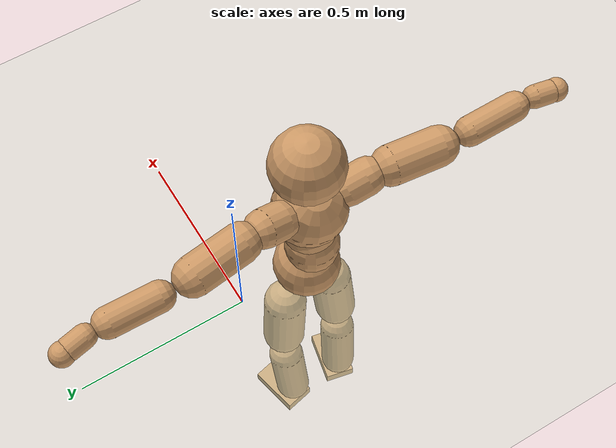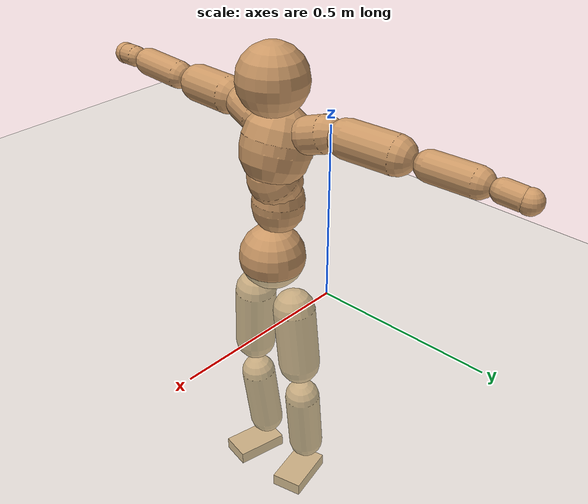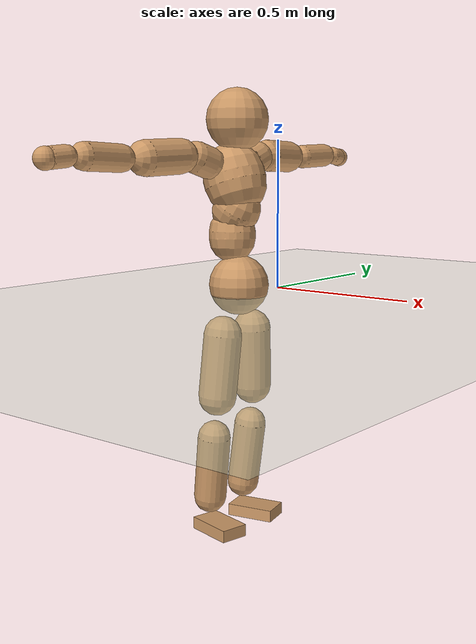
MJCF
<mujoco model="humanoid">
  <compiler coordinate="local"/>
  <default>
    <joint damping="0.0" armature="0.01" stiffness="0.0" limited="true"/>
    <geom conaffinity="1" condim="3" contype="7" margin="0.001" rgba="0.8 0.6 .4 1"/>
  </default>
  <asset>
    <texture type="skybox" builtin="gradient" rgb1=".4 .5 .6" rgb2="0 0 0" width="100" height="100"/>
    <texture builtin="flat" height="1278" mark="cross" markrgb="1 1 1" name="texgeom" random="0.01" rgb1="0.8 0.6 0.4" rgb2="0.8 0.6 0.4" type="cube" width="127"/>
    <texture builtin="checker" height="100" name="texplane" rgb1="0 0 0" rgb2="0.8 0.8 0.8" type="2d" width="100"/>
    <material name="MatPlane" reflectance="0.5" shininess="1" specular="1" texrepeat="60 60" texture="texplane"/>
    <material name="geom" texture="texgeom" texuniform="true"/>
  </asset>
  <worldbody>
    <light cutoff="100" diffuse="1 1 1" dir="-0 0 -1.3" directional="true" exponent="1" pos="0 0 1.3" specular=".1 .1 .1"/>
    <geom conaffinity="1" condim="3" name="floor" pos="0 0 0" rgba="0.8 0.9 0.8 1" size="100 100 .2" type="plane" material="MatPlane"/>
    <body name="Pelvis" pos="-0.0017 -0.2108 0.0328">
      <freejoint name="Pelvis"/>
      <geom type="sphere" contype="1" conaffinity="1" density="500" size="0.0973" pos="0.0000 0.0000 0.0000" name="Pelvis"/>
      <body name="L_Hip" pos="-0.0043 0.0735 -0.0885">
        <joint name="L_Hip_x" type="hinge" pos="0 0 0" axis="1 0 0" stiffness="800" damping="80" armature="0.02" range="-180.0000 180.0000"/>
        <joint name="L_Hip_y" type="hinge" pos="0 0 0" axis="0 1 0" stiffness="800" damping="80" armature="0.02" range="-180.0000 180.0000"/>
        <joint name="L_Hip_z" type="hinge" pos="0 0 0" axis="0 0 1" stiffness="800" damping="80" armature="0.02" range="-180.0000 180.0000"/>
        <geom type="capsule" contype="1" conaffinity="1" density="500" fromto="-0.0028 0.0046 -0.0666 -0.0113 0.0184 -0.2663" size="0.0627" name="L_Hip"/>
        <body name="L_Knee" pos="-0.0142 0.023 -0.3329">
          <joint name="L_Knee_x" type="hinge" pos="0 0 0" axis="1 0 0" stiffness="800" damping="80" armature="0.02" range="-180.0000 180.0000"/>
          <joint name="L_Knee_y" type="hinge" pos="0 0 0" axis="0 1 0" stiffness="800" damping="80" armature="0.02" range="-180.0000 180.0000"/>
          <joint name="L_Knee_z" type="hinge" pos="0 0 0" axis="0 0 1" stiffness="800" damping="80" armature="0.02" range="-180.0000 180.0000"/>
          <geom type="capsule" contype="1" conaffinity="1" density="500" fromto="-0.0087 -0.0021 -0.0705 -0.0349 -0.0086 -0.2819" size="0.0535" name="L_Knee"/>
          <body name="L_Ankle" pos="-0.0436 -0.0107 -0.3524">
            <joint name="L_Ankle_x" type="hinge" pos="0 0 0" axis="1 0 0" stiffness="800" damping="80" armature="0.02" range="-180.0000 180.0000"/>
            <joint name="L_Ankle_y" type="hinge" pos="0 0 0" axis="0 1 0" stiffness="800" damping="80" armature="0.02" range="-180.0000 180.0000"/>
            <joint name="L_Ankle_z" type="hinge" pos="0 0 0" axis="0 0 1" stiffness="800" damping="80" armature="0.02" range="-180.0000 180.0000"/>
            <geom type="box" contype="1" conaffinity="1" density="500" pos="0.0547 0.0122 -0.0258" size="0.0799 0.0473 0.0198" quat="0.9940 0.0000 0.0000 0.1097" name="L_Ankle"/>
            <body name="L_Toe" pos="0.1094 0.0244 -0.0516">
              <joint name="L_Toe_x" type="hinge" pos="0 0 0" axis="1 0 0" stiffness="500" damping="50" armature="0.02" range="-180.0000 180.0000"/>
              <joint name="L_Toe_y" type="hinge" pos="0 0 0" axis="0 1 0" stiffness="500" damping="50" armature="0.02" range="-180.0000 180.0000"/>
              <joint name="L_Toe_z" type="hinge" pos="0 0 0" axis="0 0 1" stiffness="500" damping="50" armature="0.02" range="-180.0000 180.0000"/>
              <geom type="box" contype="1" conaffinity="1" density="500" pos="0.0000 0.0000 0.0252" size="0.001 0.0024 0.001" quat="0.9932 0.0000 0.0000 0.1162" name="L_Toe"/>
            </body>
          </body>
        </body>
      </body>
      <body name="R_Hip" pos="-0.0014 -0.0715 -0.0889">
        <joint name="R_Hip_x" type="hinge" pos="0 0 0" axis="1 0 0" stiffness="800" damping="80" armature="0.02" range="-180.0000 180.0000"/>
        <joint name="R_Hip_y" type="hinge" pos="0 0 0" axis="0 1 0" stiffness="800" damping="80" armature="0.02" range="-180.0000 180.0000"/>
        <joint name="R_Hip_z" type="hinge" pos="0 0 0" axis="0 0 1" stiffness="800" damping="80" armature="0.02" range="-180.0000 180.0000"/>
        <geom type="capsule" contype="1" conaffinity="1" density="500" fromto="-0.0032 -0.0057 -0.0673 -0.0128 -0.0229 -0.2692" size="0.0621" name="R_Hip"/>
        <body name="R_Knee" pos="-0.016 -0.0287 -0.3365">
          <joint name="R_Knee_x" type="hinge" pos="0 0 0" axis="1 0 0" stiffness="800" damping="80" armature="0.02" range="-180.0000 180.0000"/>
          <joint name="R_Knee_y" type="hinge" pos="0 0 0" axis="0 1 0" stiffness="800" damping="80" armature="0.02" range="-180.0000 180.0000"/>
          <joint name="R_Knee_z" type="hinge" pos="0 0 0" axis="0 0 1" stiffness="800" damping="80" armature="0.02" range="-180.0000 180.0000"/>
          <geom type="capsule" contype="1" conaffinity="1" density="500" fromto="-0.0085 0.0025 -0.0706 -0.0341 0.0098 -0.2822" size="0.0535" name="R_Knee"/>
          <body name="R_Ankle" pos="-0.0427 0.0123 -0.3528">
            <joint name="R_Ankle_x" type="hinge" pos="0 0 0" axis="1 0 0" stiffness="800" damping="80" armature="0.02" range="-180.0000 180.0000"/>
            <joint name="R_Ankle_y" type="hinge" pos="0 0 0" axis="0 1 0" stiffness="800" damping="80" armature="0.02" range="-180.0000 180.0000"/>
            <joint name="R_Ankle_z" type="hinge" pos="0 0 0" axis="0 0 1" stiffness="800" damping="80" armature="0.02" range="-180.0000 180.0000"/>
            <geom type="box" contype="1" conaffinity="1" density="500" pos="0.0568 -0.0120 -0.0219" size="0.0806 0.0465 0.0199" quat="0.9946 0.0000 0.0000 -0.1041" name="R_Ankle"/>
            <body name="R_Toe" pos="0.1135 -0.024 -0.0438">
              <joint name="R_Toe_x" type="hinge" pos="0 0 0" axis="1 0 0" stiffness="500" damping="50" armature="0.02" range="-180.0000 180.0000"/>
              <joint name="R_Toe_y" type="hinge" pos="0 0 0" axis="0 1 0" stiffness="500" damping="50" armature="0.02" range="-180.0000 180.0000"/>
              <joint name="R_Toe_z" type="hinge" pos="0 0 0" axis="0 0 1" stiffness="500" damping="50" armature="0.02" range="-180.0000 180.0000"/>
              <geom type="box" contype="1" conaffinity="1" density="500" pos="0.0000 0.0000 0.0232" size="0.001 0.0024 0.0011" quat="0.9956 0.0000 0.0000 -0.0940" name="R_Toe"/>
            </body>
          </body>
        </body>
      </body>
      <body name="Torso" pos="-0.0259 -0.002 0.1023">
        <joint name="Torso_x" type="hinge" pos="0 0 0" axis="1 0 0" stiffness="1000" damping="100" armature="0.02" range="-180.0000 180.0000"/>
        <joint name="Torso_y" type="hinge" pos="0 0 0" axis="0 1 0" stiffness="1000" damping="100" armature="0.02" range="-180.0000 180.0000"/>
        <joint name="Torso_z" type="hinge" pos="0 0 0" axis="0 0 1" stiffness="1000" damping="100" armature="0.02" range="-180.0000 180.0000"/>
        <geom type="capsule" contype="1" conaffinity="1" density="500" fromto="-0.0010 0.0019 0.0703 -0.0006 0.0013 0.0469" size="0.0761" name="Torso"/>
        <body name="Spine" pos="-0.0016 0.0032 0.1171">
          <joint name="Spine_x" type="hinge" pos="0 0 0" axis="1 0 0" stiffness="1000" damping="100" armature="0.02" range="-180.0000 180.0000"/>
          <joint name="Spine_y" type="hinge" pos="0 0 0" axis="0 1 0" stiffness="1000" damping="100" armature="0.02" range="-180.0000 180.0000"/>
          <joint name="Spine_z" type="hinge" pos="0 0 0" axis="0 0 1" stiffness="1000" damping="100" armature="0.02" range="-180.0000 180.0000"/>
          <geom type="capsule" contype="1" conaffinity="1" density="500" fromto="0.0193 0.0015 0.0288 0.0129 0.0010 0.0192" size="0.0773" name="Spine"/>
          <body name="Chest" pos="0.0322 0.0025 0.048">
            <joint name="Chest_x" type="hinge" pos="0 0 0" axis="1 0 0" stiffness="1000" damping="100" armature="0.02" range="-180.0000 180.0000"/>
            <joint name="Chest_y" type="hinge" pos="0 0 0" axis="0 1 0" stiffness="1000" damping="100" armature="0.02" range="-180.0000 180.0000"/>
            <joint name="Chest_z" type="hinge" pos="0 0 0" axis="0 0 1" stiffness="1000" damping="100" armature="0.02" range="-180.0000 180.0000"/>
            <geom type="capsule" contype="1" conaffinity="1" density="500" fromto="-0.0288 -0.0006 0.0887 -0.0192 -0.0004 0.0591" size="0.1011" name="Chest"/>
            <body name="Neck" pos="-0.0588 -0.0014 0.2059">
              <joint name="Neck_x" type="hinge" pos="0 0 0" axis="1 0 0" stiffness="500" damping="50" armature="0.02" range="-180.0000 180.0000"/>
              <joint name="Neck_y" type="hinge" pos="0 0 0" axis="0 1 0" stiffness="500" damping="50" armature="0.02" range="-180.0000 180.0000"/>
              <joint name="Neck_z" type="hinge" pos="0 0 0" axis="0 0 1" stiffness="500" damping="50" armature="0.02" range="-180.0000 180.0000"/>
              <geom type="capsule" contype="1" conaffinity="1" density="500" fromto="0.0093 0.0001 0.0111 0.0373 0.0004 0.0443" size="0.0421" name="Neck"/>
              <body name="Head" pos="0.0466 0.0005 0.0553">
                <joint name="Head_x" type="hinge" pos="0 0 0" axis="1 0 0" stiffness="500" damping="50" armature="0.02" range="-180.0000 180.0000"/>
                <joint name="Head_y" type="hinge" pos="0 0 0" axis="0 1 0" stiffness="500" damping="50" armature="0.02" range="-180.0000 180.0000"/>
                <joint name="Head_z" type="hinge" pos="0 0 0" axis="0 0 1" stiffness="500" damping="50" armature="0.02" range="-180.0000 180.0000"/>
                <geom type="sphere" contype="1" conaffinity="1" density="500" size="0.1002" pos="0.0000 0.0000 0.0000" name="Head"/>
              </body>
            </body>
            <body name="L_Thorax" pos="-0.0408 0.0781 0.1196">
              <joint name="L_Thorax_x" type="hinge" pos="0 0 0" axis="1 0 0" stiffness="500" damping="50" armature="0.02" range="-180.0000 180.0000"/>
              <joint name="L_Thorax_y" type="hinge" pos="0 0 0" axis="0 1 0" stiffness="500" damping="50" armature="0.02" range="-180.0000 180.0000"/>
              <joint name="L_Thorax_z" type="hinge" pos="0 0 0" axis="0 0 1" stiffness="500" damping="50" armature="0.02" range="-180.0000 180.0000"/>
              <geom type="capsule" contype="1" conaffinity="1" density="500" fromto="-0.0021 0.0177 0.0058 -0.0085 0.0707 0.0232" size="0.0518" name="L_Thorax"/>
              <body name="L_Shoulder" pos="-0.0107 0.0883 0.029">
                <joint name="L_Shoulder_x" type="hinge" pos="0 0 0" axis="1 0 0" stiffness="500" damping="50" armature="0.02" range="-720.0000 720.0000"/>
                <joint name="L_Shoulder_y" type="hinge" pos="0 0 0" axis="0 1 0" stiffness="500" damping="50" armature="0.02" range="-720.0000 720.0000"/>
                <joint name="L_Shoulder_z" type="hinge" pos="0 0 0" axis="0 0 1" stiffness="500" damping="50" armature="0.02" range="-720.0000 720.0000"/>
                <geom type="capsule" contype="1" conaffinity="1" density="500" fromto="-0.0057 0.0482 -0.0014 -0.0230 0.1927 -0.0055" size="0.0536" name="L_Shoulder"/>
                <body name="L_Elbow" pos="-0.0287 0.2409 -0.0068">
                  <joint name="L_Elbow_x" type="hinge" pos="0 0 0" axis="1 0 0" stiffness="500" damping="50" armature="0.02" range="-720.0000 720.0000"/>
                  <joint name="L_Elbow_y" type="hinge" pos="0 0 0" axis="0 1 0" stiffness="500" damping="50" armature="0.02" range="-720.0000 720.0000"/>
                  <joint name="L_Elbow_z" type="hinge" pos="0 0 0" axis="0 0 1" stiffness="500" damping="50" armature="0.02" range="-720.0000 720.0000"/>
                  <geom type="capsule" contype="1" conaffinity="1" density="500" fromto="0.0002 0.0455 0.0016 0.0009 0.1822 0.0064" size="0.041" name="L_Elbow"/>
                  <body name="L_Wrist" pos="0.0011 0.2277 0.008">
                    <joint name="L_Wrist_x" type="hinge" pos="0 0 0" axis="1 0 0" stiffness="300" damping="30" armature="0.02" range="-180.0000 180.0000"/>
                    <joint name="L_Wrist_y" type="hinge" pos="0 0 0" axis="0 1 0" stiffness="300" damping="30" armature="0.02" range="-180.0000 180.0000"/>
                    <joint name="L_Wrist_z" type="hinge" pos="0 0 0" axis="0 0 1" stiffness="300" damping="30" armature="0.02" range="-180.0000 180.0000"/>
                    <geom type="capsule" contype="1" conaffinity="1" density="500" fromto="-0.0027 0.0163 -0.0019 -0.0106 0.0653 -0.0077" size="0.0312" name="L_Wrist"/>
                    <body name="L_Hand" pos="-0.0133 0.0816 -0.0096">
                      <joint name="L_Hand_x" type="hinge" pos="0 0 0" axis="1 0 0" stiffness="300" damping="30" armature="0.02" range="-180.0000 180.0000"/>
                      <joint name="L_Hand_y" type="hinge" pos="0 0 0" axis="0 1 0" stiffness="300" damping="30" armature="0.02" range="-180.0000 180.0000"/>
                      <joint name="L_Hand_z" type="hinge" pos="0 0 0" axis="0 0 1" stiffness="300" damping="30" armature="0.02" range="-180.0000 180.0000"/>
                      <geom type="sphere" contype="1" conaffinity="1" density="500" size="0.0330" pos="0.0000 0.0000 0.0000" name="L_Hand"/>
                    </body>
                  </body>
                </body>
              </body>
            </body>
            <body name="R_Thorax" pos="-0.0445 -0.0795 0.1181">
              <joint name="R_Thorax_x" type="hinge" pos="0 0 0" axis="1 0 0" stiffness="500" damping="50" armature="0.02" range="-180.0000 180.0000"/>
              <joint name="R_Thorax_y" type="hinge" pos="0 0 0" axis="0 1 0" stiffness="500" damping="50" armature="0.02" range="-180.0000 180.0000"/>
              <joint name="R_Thorax_z" type="hinge" pos="0 0 0" axis="0 0 1" stiffness="500" damping="50" armature="0.02" range="-180.0000 180.0000"/>
              <geom type="capsule" contype="1" conaffinity="1" density="500" fromto="-0.0023 -0.0182 0.0059 -0.0092 -0.0729 0.0238" size="0.0509" name="R_Thorax"/>
              <body name="R_Shoulder" pos="-0.0116 -0.0911 0.0297">
                <joint name="R_Shoulder_x" type="hinge" pos="0 0 0" axis="1 0 0" stiffness="500" damping="50" armature="0.02" range="-720.0000 720.0000"/>
                <joint name="R_Shoulder_y" type="hinge" pos="0 0 0" axis="0 1 0" stiffness="500" damping="50" armature="0.02" range="-720.0000 720.0000"/>
                <joint name="R_Shoulder_z" type="hinge" pos="0 0 0" axis="0 0 1" stiffness="500" damping="50" armature="0.02" range="-720.0000 720.0000"/>
                <geom type="capsule" contype="1" conaffinity="1" density="500" fromto="-0.0041 -0.0468 -0.0019 -0.0164 -0.1874 -0.0075" size="0.0548" name="R_Shoulder"/>
                <body name="R_Elbow" pos="-0.0205 -0.2342 -0.0094">
                  <joint name="R_Elbow_x" type="hinge" pos="0 0 0" axis="1 0 0" stiffness="500" damping="50" armature="0.02" range="-720.0000 720.0000"/>
                  <joint name="R_Elbow_y" type="hinge" pos="0 0 0" axis="0 1 0" stiffness="500" damping="50" armature="0.02" range="-720.0000 720.0000"/>
                  <joint name="R_Elbow_z" type="hinge" pos="0 0 0" axis="0 0 1" stiffness="500" damping="50" armature="0.02" range="-720.0000 720.0000"/>
                  <geom type="capsule" contype="1" conaffinity="1" density="500" fromto="-0.0001 -0.0465 0.0020 -0.0005 -0.1861 0.0080" size="0.0412" name="R_Elbow"/>
                  <body name="R_Wrist" pos="-0.0006 -0.2326 0.01">
                    <joint name="R_Wrist_x" type="hinge" pos="0 0 0" axis="1 0 0" stiffness="300" damping="30" armature="0.02" range="-180.0000 180.0000"/>
                    <joint name="R_Wrist_y" type="hinge" pos="0 0 0" axis="0 1 0" stiffness="300" damping="30" armature="0.02" range="-180.0000 180.0000"/>
                    <joint name="R_Wrist_z" type="hinge" pos="0 0 0" axis="0 0 1" stiffness="300" damping="30" armature="0.02" range="-180.0000 180.0000"/>
                    <geom type="capsule" contype="1" conaffinity="1" density="500" fromto="-0.0021 -0.0163 -0.0015 -0.0085 -0.0653 -0.0059" size="0.0318" name="R_Wrist"/>
                    <body name="R_Hand" pos="-0.0107 -0.0816 -0.0074">
                      <joint name="R_Hand_x" type="hinge" pos="0 0 0" axis="1 0 0" stiffness="300" damping="30" armature="0.02" range="-180.0000 180.0000"/>
                      <joint name="R_Hand_y" type="hinge" pos="0 0 0" axis="0 1 0" stiffness="300" damping="30" armature="0.02" range="-180.0000 180.0000"/>
                      <joint name="R_Hand_z" type="hinge" pos="0 0 0" axis="0 0 1" stiffness="300" damping="30" armature="0.02" range="-180.0000 180.0000"/>
                      <geom type="sphere" contype="1" conaffinity="1" density="500" size="0.0330" pos="0.0000 0.0000 0.0000" name="R_Hand"/>
                    </body>
                  </body>
                </body>
              </body>
            </body>
          </body>
        </body>
      </body>
    </body>
  </worldbody>
  <actuator>
    <motor name="L_Hip_x" joint="L_Hip_x" gear="500"/>
    <motor name="L_Hip_y" joint="L_Hip_y" gear="500"/>
    <motor name="L_Hip_z" joint="L_Hip_z" gear="500"/>
    <motor name="L_Knee_x" joint="L_Knee_x" gear="500"/>
    <motor name="L_Knee_y" joint="L_Knee_y" gear="500"/>
    <motor name="L_Knee_z" joint="L_Knee_z" gear="500"/>
    <motor name="L_Ankle_x" joint="L_Ankle_x" gear="500"/>
    <motor name="L_Ankle_y" joint="L_Ankle_y" gear="500"/>
    <motor name="L_Ankle_z" joint="L_Ankle_z" gear="500"/>
    <motor name="L_Toe_x" joint="L_Toe_x" gear="500"/>
    <motor name="L_Toe_y" joint="L_Toe_y" gear="500"/>
    <motor name="L_Toe_z" joint="L_Toe_z" gear="500"/>
    <motor name="R_Hip_x" joint="R_Hip_x" gear="500"/>
    <motor name="R_Hip_y" joint="R_Hip_y" gear="500"/>
    <motor name="R_Hip_z" joint="R_Hip_z" gear="500"/>
    <motor name="R_Knee_x" joint="R_Knee_x" gear="500"/>
    <motor name="R_Knee_y" joint="R_Knee_y" gear="500"/>
    <motor name="R_Knee_z" joint="R_Knee_z" gear="500"/>
    <motor name="R_Ankle_x" joint="R_Ankle_x" gear="500"/>
    <motor name="R_Ankle_y" joint="R_Ankle_y" gear="500"/>
    <motor name="R_Ankle_z" joint="R_Ankle_z" gear="500"/>
    <motor name="R_Toe_x" joint="R_Toe_x" gear="500"/>
    <motor name="R_Toe_y" joint="R_Toe_y" gear="500"/>
    <motor name="R_Toe_z" joint="R_Toe_z" gear="500"/>
    <motor name="Torso_x" joint="Torso_x" gear="500"/>
    <motor name="Torso_y" joint="Torso_y" gear="500"/>
    <motor name="Torso_z" joint="Torso_z" gear="500"/>
    <motor name="Spine_x" joint="Spine_x" gear="500"/>
    <motor name="Spine_y" joint="Spine_y" gear="500"/>
    <motor name="Spine_z" joint="Spine_z" gear="500"/>
    <motor name="Chest_x" joint="Chest_x" gear="500"/>
    <motor name="Chest_y" joint="Chest_y" gear="500"/>
    <motor name="Chest_z" joint="Chest_z" gear="500"/>
    <motor name="Neck_x" joint="Neck_x" gear="500"/>
    <motor name="Neck_y" joint="Neck_y" gear="500"/>
    <motor name="Neck_z" joint="Neck_z" gear="500"/>
    <motor name="Head_x" joint="Head_x" gear="500"/>
    <motor name="Head_y" joint="Head_y" gear="500"/>
    <motor name="Head_z" joint="Head_z" gear="500"/>
    <motor name="L_Thorax_x" joint="L_Thorax_x" gear="500"/>
    <motor name="L_Thorax_y" joint="L_Thorax_y" gear="500"/>
    <motor name="L_Thorax_z" joint="L_Thorax_z" gear="500"/>
    <motor name="L_Shoulder_x" joint="L_Shoulder_x" gear="500"/>
    <motor name="L_Shoulder_y" joint="L_Shoulder_y" gear="500"/>
    <motor name="L_Shoulder_z" joint="L_Shoulder_z" gear="500"/>
    <motor name="L_Elbow_x" joint="L_Elbow_x" gear="500"/>
    <motor name="L_Elbow_y" joint="L_Elbow_y" gear="500"/>
    <motor name="L_Elbow_z" joint="L_Elbow_z" gear="500"/>
    <motor name="L_Wrist_x" joint="L_Wrist_x" gear="500"/>
    <motor name="L_Wrist_y" joint="L_Wrist_y" gear="500"/>
    <motor name="L_Wrist_z" joint="L_Wrist_z" gear="500"/>
    <motor name="L_Hand_x" joint="L_Hand_x" gear="500"/>
    <motor name="L_Hand_y" joint="L_Hand_y" gear="500"/>
    <motor name="L_Hand_z" joint="L_Hand_z" gear="500"/>
    <motor name="R_Thorax_x" joint="R_Thorax_x" gear="500"/>
    <motor name="R_Thorax_y" joint="R_Thorax_y" gear="500"/>
    <motor name="R_Thorax_z" joint="R_Thorax_z" gear="500"/>
    <motor name="R_Shoulder_x" joint="R_Shoulder_x" gear="500"/>
    <motor name="R_Shoulder_y" joint="R_Shoulder_y" gear="500"/>
    <motor name="R_Shoulder_z" joint="R_Shoulder_z" gear="500"/>
    <motor name="R_Elbow_x" joint="R_Elbow_x" gear="500"/>
    <motor name="R_Elbow_y" joint="R_Elbow_y" gear="500"/>
    <motor name="R_Elbow_z" joint="R_Elbow_z" gear="500"/>
    <motor name="R_Wrist_x" joint="R_Wrist_x" gear="500"/>
    <motor name="R_Wrist_y" joint="R_Wrist_y" gear="500"/>
    <motor name="R_Wrist_z" joint="R_Wrist_z" gear="500"/>
    <motor name="R_Hand_x" joint="R_Hand_x" gear="500"/>
    <motor name="R_Hand_y" joint="R_Hand_y" gear="500"/>
    <motor name="R_Hand_z" joint="R_Hand_z" gear="500"/>
  </actuator>
  <contact>
    <exclude body1="Torso" body2="Chest"/>
    <exclude body1="Head" body2="Chest"/>
    <exclude body1="R_Knee" body2="R_Toe"/>
    <exclude body1="R_Knee" body2="L_Ankle"/>
    <exclude body1="R_Knee" body2="L_Toe"/>
    <exclude body1="L_Knee" body2="L_Toe"/>
    <exclude body1="L_Knee" body2="R_Ankle"/>
    <exclude body1="L_Knee" body2="R_Toe"/>
    <exclude body1="L_Shoulder" body2="Chest"/>
    <exclude body1="R_Shoulder" body2="Chest"/>
  </contact>
  <sensor/>
  <size njmax="700" nconmax="700"/>
</mujoco>
